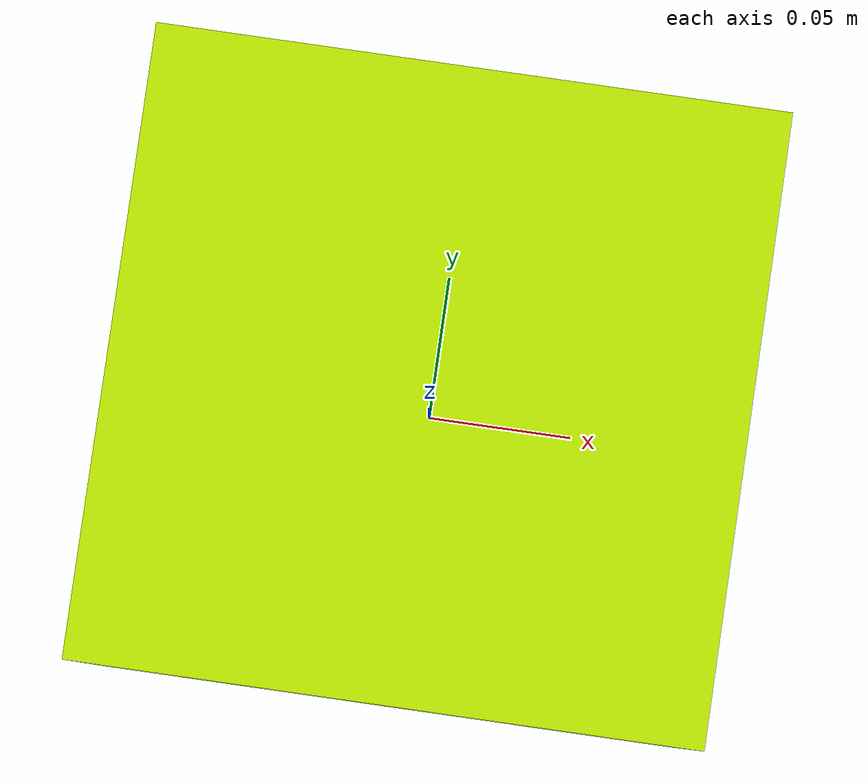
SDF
<?xml version="1.0"?>
<sdf version="1.4">

  <model name="ttfest_obstacle">
    <static>true</static>
    <link name="base">
      <pose>0 0 0 0 0 0</pose>

      <visual name="visual">
        <geometry>
          <mesh>
            <uri>model://ttfest_obstacle/meshes/obstacle.dae</uri>
          </mesh>
        </geometry>
      </visual>

      <collision name="collision">
        <geometry>
          <mesh>
            <uri>model://ttfest_obstacle/meshes/obstacle.dae</uri>
          </mesh>
        </geometry>
      </collision>
    </link>
  </model>
</sdf>
